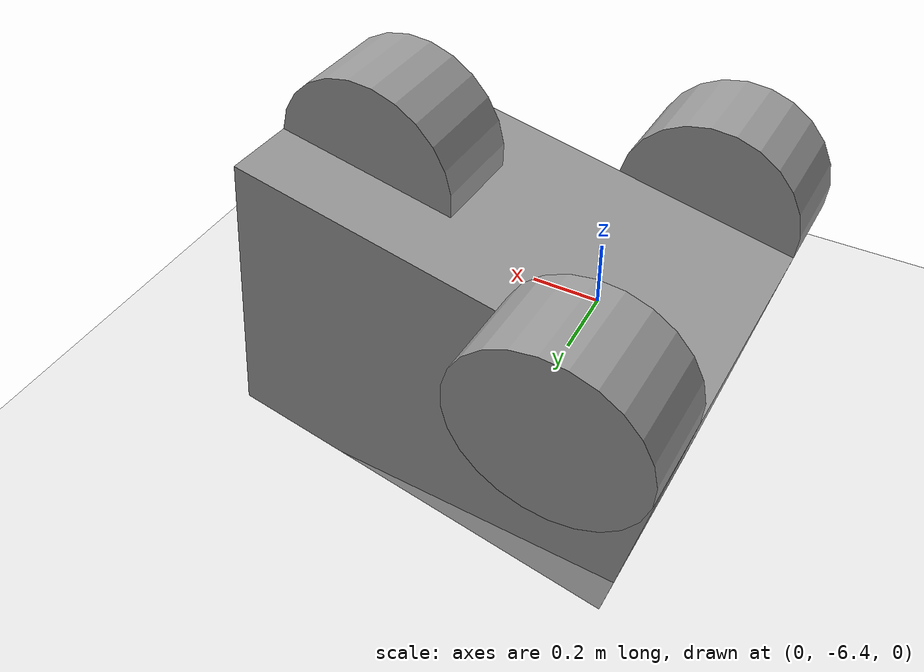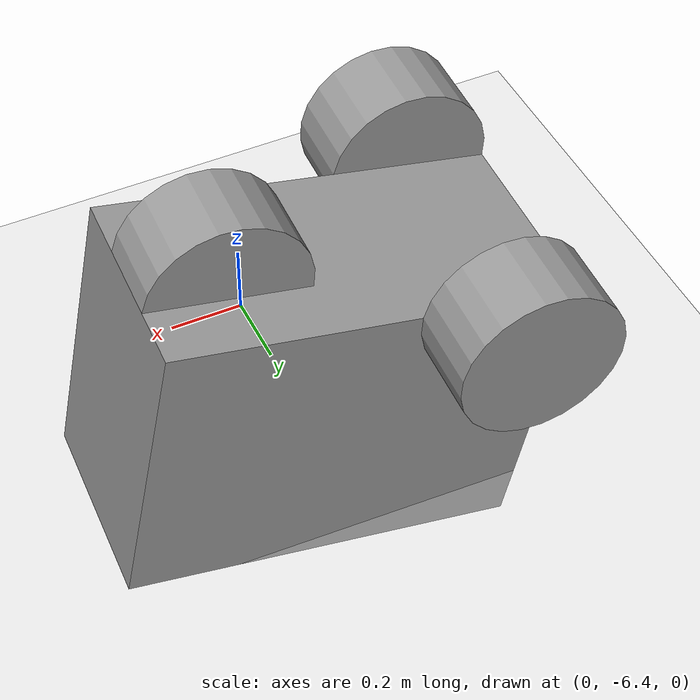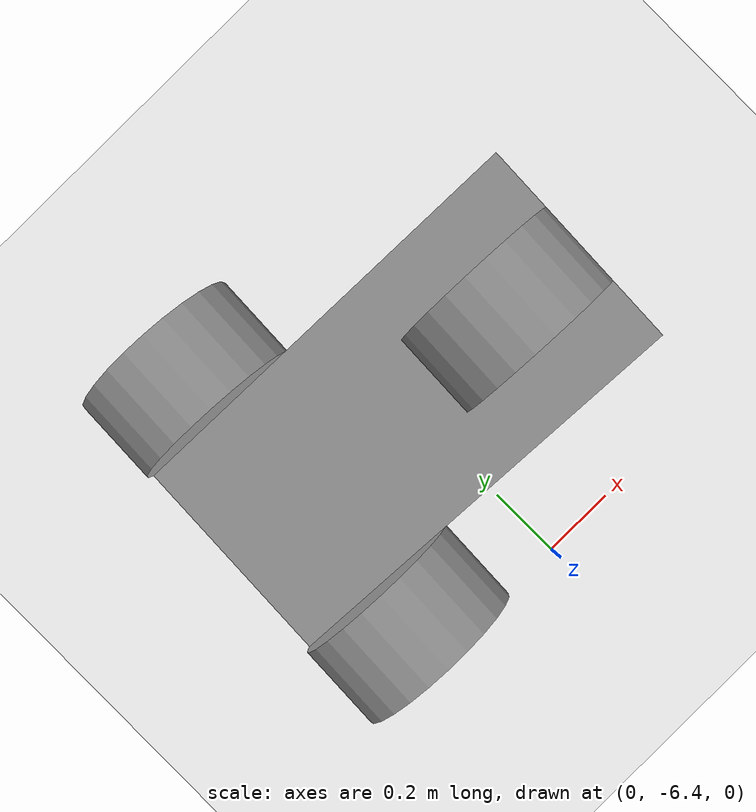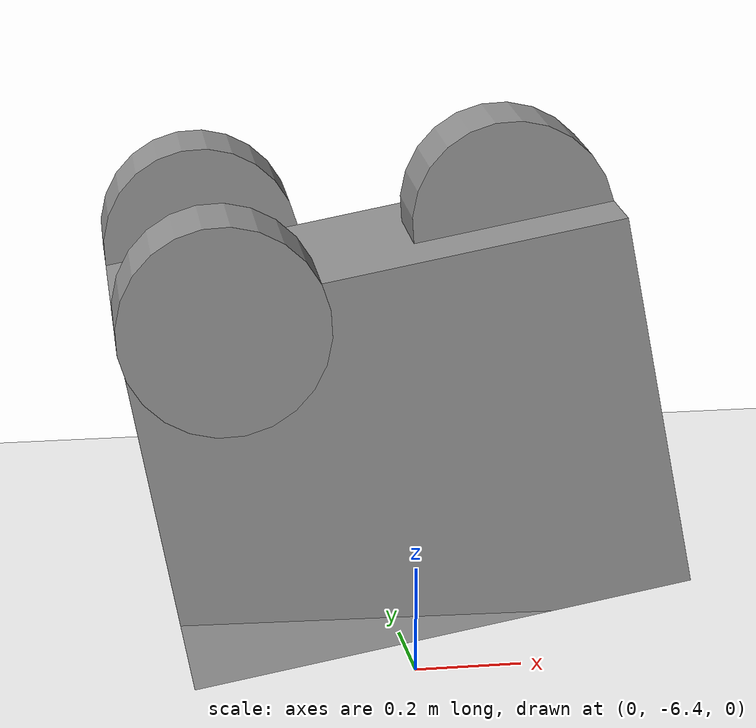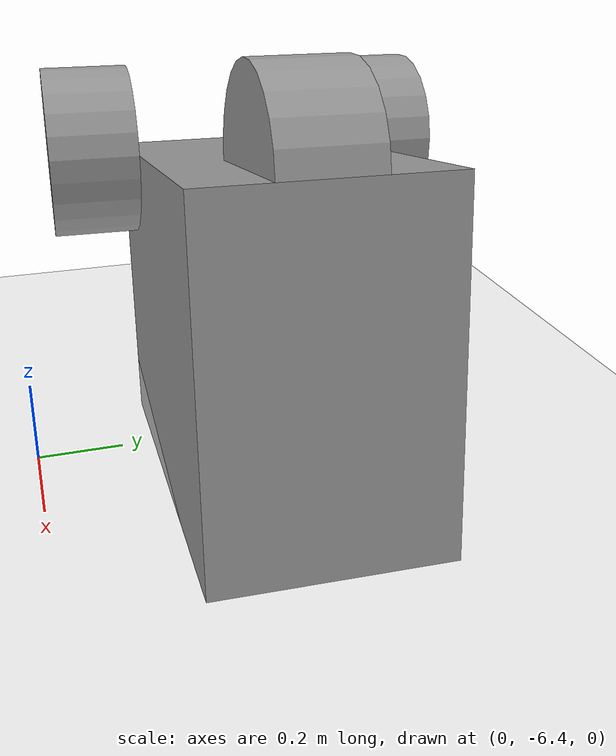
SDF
<sdf version="1.6">
 <world name="default">
  <model name="ground_plane">
   <static>1</static>
   <link name="link">
    <collision name="collision">
     <geometry><plane><normal>0 0 1</normal><size>100 100</size></plane></geometry>
     <surface><friction><ode><mu>100</mu><mu2>50</mu2></ode></friction></surface>
    </collision>
    <visual name="visual">
     <cast_shadows>0</cast_shadows>
     <geometry><plane><normal>0 0 1</normal><size>100 100</size></plane></geometry>
     <material>
      <script><uri>file://media/materials/scripts/gazebo.material</uri><name>Gazebo/Grey</name></script>
     </material>
    </visual>
   </link>
  </model>
  <model name="robocar2">
   <link name="front_wheel">
    <pose>-0.3 4 0.2 1.5708 -0 0</pose>
    <inertial>
     <mass>1</mass>
     <inertia><ixx>0.145833</ixx><ixy>0</ixy><ixz>0</ixz><iyy>0.145833</iyy><iyz>0</iyz><izz>0.125</izz></inertia>
     <pose>0 0 0 1.5708 -0 0</pose>
    </inertial>
    <visual name="visual">
     <pose>0 0 0 0 -0 1.5708</pose>
     <geometry><cylinder><radius>0.2</radius><length>0.2</length></cylinder></geometry>
     <material>
      <lighting>1</lighting>
      <script><uri>file://media/materials/scripts/gazebo.material</uri><name>Gazebo/Grey</name></script>
      <shader type="pixel"><normal_map>__default__</normal_map></shader>
      <ambient>0.3 0.3 0.3 1</ambient>
      <diffuse>0.7 0.7 0.7 1</diffuse>
      <specular>0.01 0.01 0.01 1</specular>
      <emissive>0 0 0 1</emissive>
     </material>
    </visual>
    <collision name="collision">
     <geometry><cylinder><radius>0.2</radius><length>0.2</length></cylinder></geometry>
     <surface>
      <friction>
       <ode><mu>1</mu><mu2>1</mu2><fdir1>0 0 0</fdir1><slip1>0</slip1><slip2>0</slip2></ode>
       <torsional>
        <coefficient>1</coefficient>
        <patch_radius>0</patch_radius>
        <surface_radius>0</surface_radius>
        <use_patch_radius>1</use_patch_radius>
        <ode><slip>0</slip></ode>
       </torsional>
      </friction>
      <bounce><restitution_coefficient>0</restitution_coefficient><threshold>1e+06</threshold></bounce>
      <contact>
       <collide_without_contact>0</collide_without_contact>
       <collide_without_contact_bitmask>1</collide_without_contact_bitmask>
       <collide_bitmask>1</collide_bitmask>
       <ode>
        <soft_cfm>0</soft_cfm>
        <soft_erp>0.2</soft_erp>
        <kp>1e+13</kp>
        <kd>1</kd>
        <max_vel>0.01</max_vel>
        <min_depth>0</min_depth>
       </ode>
       <bullet>
        <split_impulse>1</split_impulse>
        <split_impulse_penetration_threshold>-0.01</split_impulse_penetration_threshold>
        <soft_cfm>0</soft_cfm>
        <soft_erp>0.2</soft_erp>
        <kp>1e+13</kp>
        <kd>1</kd>
       </bullet>
      </contact>
     </surface>
    </collision>
   </link>
   <link name="body">
    <pose>0 4 0.575 0 -0 0</pose>
    <inertial>
     <mass>1</mass>
     <inertia>
      <ixx>0.166667</ixx>
      <ixy>0</ixy>
      <ixz>0</ixz>
      <iyy>0.166667</iyy>
      <iyz>0</iyz>
      <izz>0.166667</izz>
     </inertia>
    </inertial>
    <visual name="visual">
     <geometry><box><size>1 0.5 0.75</size></box></geometry>
     <material>
      <lighting>1</lighting>
      <script><uri>file://media/materials/scripts/gazebo.material</uri><name>Gazebo/Grey</name></script>
      <shader type="pixel"><normal_map>__default__</normal_map></shader>
      <ambient>0.3 0.3 0.3 1</ambient>
      <diffuse>0.7 0.7 0.7 1</diffuse>
      <specular>0.01 0.01 0.01 1</specular>
      <emissive>0 0 0 1</emissive>
     </material>
    </visual>
    <collision name="collision">
     <geometry><box><size>1 0.5 0.75</size></box></geometry>
     <surface>
      <friction>
       <ode><mu>1</mu><mu2>1</mu2><fdir1>0 0 0</fdir1><slip1>0</slip1><slip2>0</slip2></ode>
       <torsional>
        <coefficient>1</coefficient>
        <patch_radius>0</patch_radius>
        <surface_radius>0</surface_radius>
        <use_patch_radius>1</use_patch_radius>
        <ode><slip>0</slip></ode>
       </torsional>
      </friction>
      <bounce><restitution_coefficient>0</restitution_coefficient><threshold>1e+06</threshold></bounce>
      <contact>
       <collide_without_contact>0</collide_without_contact>
       <collide_without_contact_bitmask>1</collide_without_contact_bitmask>
       <collide_bitmask>1</collide_bitmask>
       <ode>
        <soft_cfm>0</soft_cfm>
        <soft_erp>0.2</soft_erp>
        <kp>1e+13</kp>
        <kd>1</kd>
        <max_vel>0.01</max_vel>
        <min_depth>0</min_depth>
       </ode>
       <bullet>
        <split_impulse>1</split_impulse>
        <split_impulse_penetration_threshold>-0.01</split_impulse_penetration_threshold>
        <soft_cfm>0</soft_cfm>
        <soft_erp>0.2</soft_erp>
        <kp>1e+13</kp>
        <kd>1</kd>
       </bullet>
      </contact>
     </surface>
    </collision>
   </link>
   <link name="left_wheel">
    <pose>0.3 4.35 0.2 1.5708 -0 0</pose>
    <inertial>
     <mass>1</mass>
     <inertia><ixx>0.145833</ixx><ixy>0</ixy><ixz>0</ixz><iyy>0.145833</iyy><iyz>0</iyz><izz>0.125</izz></inertia>
     <pose>0 0 0 1.5708 -0 0</pose>
    </inertial>
    <visual name="visual">
     <pose>0 0 0 0 -0 1.5708</pose>
     <geometry><cylinder><radius>0.2</radius><length>0.2</length></cylinder></geometry>
     <material>
      <lighting>1</lighting>
      <script><uri>file://media/materials/scripts/gazebo.material</uri><name>Gazebo/Grey</name></script>
      <shader type="pixel"><normal_map>__default__</normal_map></shader>
      <ambient>0.3 0.3 0.3 1</ambient>
      <diffuse>0.7 0.7 0.7 1</diffuse>
      <specular>0.01 0.01 0.01 1</specular>
      <emissive>0 0 0 1</emissive>
     </material>
    </visual>
    <collision name="collision">
     <geometry><cylinder><radius>0.2</radius><length>0.2</length></cylinder></geometry>
     <surface>
      <friction>
       <ode><mu>1</mu><mu2>1</mu2><fdir1>0 0 0</fdir1><slip1>0</slip1><slip2>0</slip2></ode>
       <torsional>
        <coefficient>1</coefficient>
        <patch_radius>0</patch_radius>
        <surface_radius>0</surface_radius>
        <use_patch_radius>1</use_patch_radius>
        <ode><slip>0</slip></ode>
       </torsional>
      </friction>
      <bounce><restitution_coefficient>0</restitution_coefficient><threshold>1e+06</threshold></bounce>
      <contact>
       <collide_without_contact>0</collide_without_contact>
       <collide_without_contact_bitmask>1</collide_without_contact_bitmask>
       <collide_bitmask>1</collide_bitmask>
       <ode>
        <soft_cfm>0</soft_cfm>
        <soft_erp>0.2</soft_erp>
        <kp>1e+13</kp>
        <kd>1</kd>
        <max_vel>0.01</max_vel>
        <min_depth>0</min_depth>
       </ode>
       <bullet>
        <split_impulse>1</split_impulse>
        <split_impulse_penetration_threshold>-0.01</split_impulse_penetration_threshold>
        <soft_cfm>0</soft_cfm>
        <soft_erp>0.2</soft_erp>
        <kp>1e+13</kp>
        <kd>1</kd>
       </bullet>
      </contact>
     </surface>
    </collision>
   </link>
   <link name="right_wheel">
    <pose>0.3 3.65 0.2 1.5708 -0 0</pose>
    <inertial>
     <mass>1</mass>
     <inertia><ixx>0.145833</ixx><ixy>0</ixy><ixz>0</ixz><iyy>0.145833</iyy><iyz>0</iyz><izz>0.125</izz></inertia>
     <pose>0 0 0 1.5708 -0 0</pose>
    </inertial>
    <visual name="visual">
     <pose>0 0 0 0 -0 1.5708</pose>
     <geometry><cylinder><radius>0.2</radius><length>0.2</length></cylinder></geometry>
     <material>
      <lighting>1</lighting>
      <script><uri>file://media/materials/scripts/gazebo.material</uri><name>Gazebo/Grey</name></script>
      <shader type="pixel"><normal_map>__default__</normal_map></shader>
      <ambient>0.3 0.3 0.3 1</ambient>
      <diffuse>0.7 0.7 0.7 1</diffuse>
      <specular>0.01 0.01 0.01 1</specular>
      <emissive>0 0 0 1</emissive>
     </material>
    </visual>
    <collision name="collision">
     <geometry><cylinder><radius>0.2</radius><length>0.2</length></cylinder></geometry>
     <surface>
      <friction>
       <ode><mu>1</mu><mu2>1</mu2><fdir1>0 0 0</fdir1><slip1>0</slip1><slip2>0</slip2></ode>
       <torsional>
        <coefficient>1</coefficient>
        <patch_radius>0</patch_radius>
        <surface_radius>0</surface_radius>
        <use_patch_radius>1</use_patch_radius>
        <ode><slip>0</slip></ode>
       </torsional>
      </friction>
      <bounce><restitution_coefficient>0</restitution_coefficient><threshold>1e+06</threshold></bounce>
      <contact>
       <collide_without_contact>0</collide_without_contact>
       <collide_without_contact_bitmask>1</collide_without_contact_bitmask>
       <collide_bitmask>1</collide_bitmask>
       <ode>
        <soft_cfm>0</soft_cfm>
        <soft_erp>0.2</soft_erp>
        <kp>1e+13</kp>
        <kd>1</kd>
        <max_vel>0.01</max_vel>
        <min_depth>0</min_depth>
       </ode>
       <bullet>
        <split_impulse>1</split_impulse>
        <split_impulse_penetration_threshold>-0.01</split_impulse_penetration_threshold>
        <soft_cfm>0</soft_cfm>
        <soft_erp>0.2</soft_erp>
        <kp>1e+13</kp>
        <kd>1</kd>
       </bullet>
      </contact>
     </surface>
    </collision>
   </link>
   <joint name="front_wheel_joint" type="revolute">
    <parent>body</parent>
    <child>front_wheel</child>
    <axis>
     <xyz>0 0 1</xyz>
     <use_parent_model_frame>0</use_parent_model_frame>
     <limit>
      <lower>-1.79769e+308</lower>
      <upper>1.79769e+308</upper>
      <effort>-1</effort>
      <velocity>-1</velocity>
     </limit>
     <dynamics>
      <spring_reference>0</spring_reference>
      <spring_stiffness>0</spring_stiffness>
      <damping>0</damping>
      <friction>0</friction>
     </dynamics>
    </axis>
    <physics>
     <ode><limit><cfm>0</cfm><erp>0.2</erp></limit><suspension><cfm>0</cfm><erp>0.2</erp></suspension></ode>
    </physics>
   </joint>
   <joint name="left_wheel_joint" type="revolute">
    <parent>body</parent>
    <child>left_wheel</child>
    <axis>
     <xyz>0 0 1</xyz>
     <use_parent_model_frame>0</use_parent_model_frame>
     <limit>
      <lower>-1.79769e+308</lower>
      <upper>1.79769e+308</upper>
      <effort>-1</effort>
      <velocity>-1</velocity>
     </limit>
     <dynamics>
      <spring_reference>0</spring_reference>
      <spring_stiffness>0</spring_stiffness>
      <damping>0</damping>
      <friction>0</friction>
     </dynamics>
    </axis>
    <physics>
     <ode><limit><cfm>0</cfm><erp>0.2</erp></limit><suspension><cfm>0</cfm><erp>0.2</erp></suspension></ode>
    </physics>
   </joint>
   <joint name="right_wheel_joint" type="revolute">
    <parent>body</parent>
    <child>right_wheel</child>
    <axis>
     <xyz>0 0 1</xyz>
     <use_parent_model_frame>0</use_parent_model_frame>
     <limit>
      <lower>-1.79769e+308</lower>
      <upper>1.79769e+308</upper>
      <effort>-1</effort>
      <velocity>-1</velocity>
     </limit>
     <dynamics>
      <spring_reference>0</spring_reference>
      <spring_stiffness>0</spring_stiffness>
      <damping>0</damping>
      <friction>0</friction>
     </dynamics>
    </axis>
    <physics>
     <ode><limit><cfm>0</cfm><erp>0.2</erp></limit><suspension><cfm>0</cfm><erp>0.2</erp></suspension></ode>
    </physics>
   </joint>
   <static>0</static>
   <pose>-0.228085 -9.85361 0.890215 -3.14159 0.188592 3.10052</pose>
  </model>
 </world>
</sdf>
